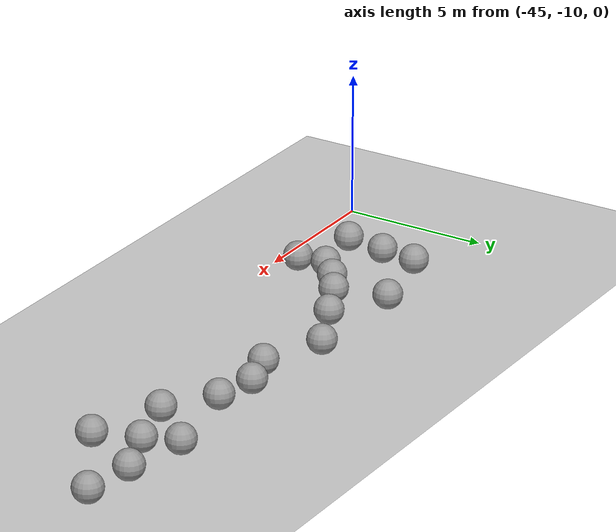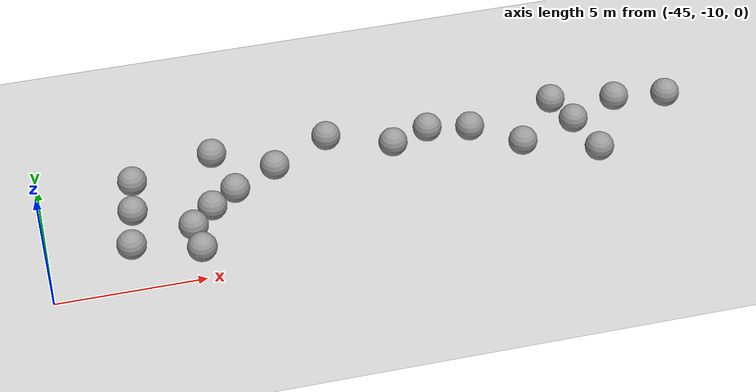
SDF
<sdf version="1.6">
 <world name="default">
  <model name="ground_plane">
   <static>1</static>
   <link name="link">
    <collision name="collision">
     <geometry><plane><normal>0 0 1</normal><size>100 100</size></plane></geometry>
     <surface><friction><ode><mu>100</mu><mu2>50</mu2></ode></friction></surface>
    </collision>
    <visual name="visual">
     <cast_shadows>0</cast_shadows>
     <geometry><plane><normal>0 0 1</normal><size>100 100</size></plane></geometry>
     <material>
      <script><uri>file://media/materials/scripts/gazebo.material</uri><name>Gazebo/Grey</name></script>
     </material>
    </visual>
   </link>
  </model>
  <model name="unit_sphere_0_clone_63">
   <pose>-42.2363 -8.45977 0.5 0 -0 0</pose>
   <link name="link">
    <inertial>
     <mass>1</mass>
     <inertia><ixx>0.1</ixx><ixy>0</ixy><ixz>0</ixz><iyy>0.1</iyy><iyz>0</iyz><izz>0.1</izz></inertia>
    </inertial>
    <collision name="collision"><geometry><sphere><radius>0.5</radius></sphere></geometry></collision>
    <visual name="visual">
     <geometry><sphere><radius>0.5</radius></sphere></geometry>
     <material>
      <script><name>Gazebo/Grey</name><uri>file://media/materials/scripts/gazebo.material</uri></script>
     </material>
    </visual>
   </link>
  </model>
  <model name="unit_sphere_0_clone_64">
   <pose>-31.5345 -5.4075 0.5 0 -0 0</pose>
   <link name="link">
    <inertial>
     <mass>1</mass>
     <inertia><ixx>0.1</ixx><ixy>0</ixy><ixz>0</ixz><iyy>0.1</iyy><iyz>0</iyz><izz>0.1</izz></inertia>
    </inertial>
    <collision name="collision"><geometry><sphere><radius>0.5</radius></sphere></geometry></collision>
    <visual name="visual">
     <geometry><sphere><radius>0.5</radius></sphere></geometry>
     <material>
      <script><name>Gazebo/Grey</name><uri>file://media/materials/scripts/gazebo.material</uri></script>
     </material>
    </visual>
   </link>
  </model>
  <model name="unit_sphere_0_clone_65">
   <pose>-24.7963 -5.36295 0.5 0 -0 0</pose>
   <link name="link">
    <inertial>
     <mass>1</mass>
     <inertia><ixx>0.1</ixx><ixy>0</ixy><ixz>0</ixz><iyy>0.1</iyy><iyz>0</iyz><izz>0.1</izz></inertia>
    </inertial>
    <collision name="collision"><geometry><sphere><radius>0.5</radius></sphere></geometry></collision>
    <visual name="visual">
     <geometry><sphere><radius>0.5</radius></sphere></geometry>
     <material>
      <script><name>Gazebo/Grey</name><uri>file://media/materials/scripts/gazebo.material</uri></script>
     </material>
    </visual>
   </link>
  </model>
  <model name="unit_sphere_0_clone_89">
   <pose>-38.4946 -6.74665 0.5 0 -0 0</pose>
   <link name="link">
    <inertial>
     <mass>1</mass>
     <inertia><ixx>0.1</ixx><ixy>0</ixy><ixz>0</ixz><iyy>0.1</iyy><iyz>0</iyz><izz>0.1</izz></inertia>
    </inertial>
    <collision name="collision"><geometry><sphere><radius>0.5</radius></sphere></geometry></collision>
    <visual name="visual">
     <geometry><sphere><radius>0.5</radius></sphere></geometry>
     <material>
      <script><name>Gazebo/Grey</name><uri>file://media/materials/scripts/gazebo.material</uri></script>
     </material>
    </visual>
   </link>
  </model>
  <model name="unit_sphere_0_clone_91">
   <pose>-26.4934 -6.08641 0.5 0 -0 0</pose>
   <link name="link">
    <inertial>
     <mass>1</mass>
     <inertia><ixx>0.1</ixx><ixy>0</ixy><ixz>0</ixz><iyy>0.1</iyy><iyz>0</iyz><izz>0.1</izz></inertia>
    </inertial>
    <collision name="collision"><geometry><sphere><radius>0.5</radius></sphere></geometry></collision>
    <visual name="visual">
     <geometry><sphere><radius>0.5</radius></sphere></geometry>
     <material>
      <script><name>Gazebo/Grey</name><uri>file://media/materials/scripts/gazebo.material</uri></script>
     </material>
    </visual>
   </link>
  </model>
  <model name="unit_sphere_1_clone_91">
   <pose>-42 -7 0.5 0 -0 0</pose>
   <link name="link">
    <inertial>
     <mass>1</mass>
     <inertia><ixx>0.1</ixx><ixy>0</ixy><ixz>0</ixz><iyy>0.1</iyy><iyz>0</iyz><izz>0.1</izz></inertia>
    </inertial>
    <collision name="collision"><geometry><sphere><radius>0.5</radius></sphere></geometry></collision>
    <visual name="visual">
     <geometry><sphere><radius>0.5</radius></sphere></geometry>
     <material>
      <script><name>Gazebo/Grey</name><uri>file://media/materials/scripts/gazebo.material</uri></script>
     </material>
    </visual>
   </link>
  </model>
  <model name="unit_sphere_1_clone_92">
   <pose>-39.3714 -7.34742 0.5 -0.024529 0.017906 -0.018975</pose>
   <link name="link">
    <inertial>
     <mass>1</mass>
     <inertia><ixx>0.1</ixx><ixy>0</ixy><ixz>0</ixz><iyy>0.1</iyy><iyz>0</iyz><izz>0.1</izz></inertia>
    </inertial>
    <collision name="collision"><geometry><sphere><radius>0.5</radius></sphere></geometry></collision>
    <visual name="visual">
     <geometry><sphere><radius>0.5</radius></sphere></geometry>
     <material>
      <script><name>Gazebo/Grey</name><uri>file://media/materials/scripts/gazebo.material</uri></script>
     </material>
    </visual>
   </link>
  </model>
  <model name="unit_sphere_1_clone_93">
   <pose>-40.1191 -8.05455 0.5 0.005742 -0.042316 -0.001716</pose>
   <link name="link">
    <inertial>
     <mass>1</mass>
     <inertia><ixx>0.1</ixx><ixy>0</ixy><ixz>0</ixz><iyy>0.1</iyy><iyz>0</iyz><izz>0.1</izz></inertia>
    </inertial>
    <collision name="collision"><geometry><sphere><radius>0.5</radius></sphere></geometry></collision>
    <visual name="visual">
     <geometry><sphere><radius>0.5</radius></sphere></geometry>
     <material>
      <script><name>Gazebo/Grey</name><uri>file://media/materials/scripts/gazebo.material</uri></script>
     </material>
    </visual>
   </link>
  </model>
  <model name="unit_sphere_1_clone_94">
   <pose>-39.9974 -9.06024 0.5 0.025412 -0.000329 0.017111</pose>
   <link name="link">
    <inertial>
     <mass>1</mass>
     <inertia><ixx>0.1</ixx><ixy>0</ixy><ixz>0</ixz><iyy>0.1</iyy><iyz>0</iyz><izz>0.1</izz></inertia>
    </inertial>
    <collision name="collision"><geometry><sphere><radius>0.5</radius></sphere></geometry></collision>
    <visual name="visual">
     <geometry><sphere><radius>0.5</radius></sphere></geometry>
     <material>
      <script><name>Gazebo/Grey</name><uri>file://media/materials/scripts/gazebo.material</uri></script>
     </material>
    </visual>
   </link>
  </model>
  <model name="unit_sphere_1_clone_95">
   <pose>-37 -6 0.5 0 -0 0</pose>
   <link name="link">
    <inertial>
     <mass>1</mass>
     <inertia><ixx>0.1</ixx><ixy>0</ixy><ixz>0</ixz><iyy>0.1</iyy><iyz>0</iyz><izz>0.1</izz></inertia>
    </inertial>
    <collision name="collision"><geometry><sphere><radius>0.5</radius></sphere></geometry></collision>
    <visual name="visual">
     <geometry><sphere><radius>0.5</radius></sphere></geometry>
     <material>
      <script><name>Gazebo/Grey</name><uri>file://media/materials/scripts/gazebo.material</uri></script>
     </material>
    </visual>
   </link>
  </model>
  <model name="unit_sphere_1_clone_96">
   <pose>-35.0267 -5.03814 0.5 0.015478 -0.010899 -7.9e-05</pose>
   <link name="link">
    <inertial>
     <mass>1</mass>
     <inertia><ixx>0.1</ixx><ixy>0</ixy><ixz>0</ixz><iyy>0.1</iyy><iyz>0</iyz><izz>0.1</izz></inertia>
    </inertial>
    <collision name="collision"><geometry><sphere><radius>0.5</radius></sphere></geometry></collision>
    <visual name="visual">
     <geometry><sphere><radius>0.5</radius></sphere></geometry>
     <material>
      <script><name>Gazebo/Grey</name><uri>file://media/materials/scripts/gazebo.material</uri></script>
     </material>
    </visual>
   </link>
  </model>
  <model name="unit_sphere_1_clone_97">
   <pose>-39 -5 0.5 0 -0 0</pose>
   <link name="link">
    <inertial>
     <mass>1</mass>
     <inertia><ixx>0.1</ixx><ixy>0</ixy><ixz>0</ixz><iyy>0.1</iyy><iyz>0</iyz><izz>0.1</izz></inertia>
    </inertial>
    <collision name="collision"><geometry><sphere><radius>0.5</radius></sphere></geometry></collision>
    <visual name="visual">
     <geometry><sphere><radius>0.5</radius></sphere></geometry>
     <material>
      <script><name>Gazebo/Grey</name><uri>file://media/materials/scripts/gazebo.material</uri></script>
     </material>
    </visual>
   </link>
  </model>
  <model name="unit_sphere_1_clone_98">
   <pose>-41.8241 -5.68601 0.5 0 -0 0</pose>
   <link name="link">
    <inertial>
     <mass>1</mass>
     <inertia><ixx>0.1</ixx><ixy>0</ixy><ixz>0</ixz><iyy>0.1</iyy><iyz>0</iyz><izz>0.1</izz></inertia>
    </inertial>
    <collision name="collision"><geometry><sphere><radius>0.5</radius></sphere></geometry></collision>
    <visual name="visual">
     <geometry><sphere><radius>0.5</radius></sphere></geometry>
     <material>
      <script><name>Gazebo/Grey</name><uri>file://media/materials/scripts/gazebo.material</uri></script>
     </material>
    </visual>
   </link>
  </model>
  <model name="unit_sphere_1_clone_100">
   <pose>-32.842 -5.82946 0.5 0 -0 0</pose>
   <link name="link">
    <inertial>
     <mass>1</mass>
     <inertia><ixx>0.1</ixx><ixy>0</ixy><ixz>0</ixz><iyy>0.1</iyy><iyz>0</iyz><izz>0.1</izz></inertia>
    </inertial>
    <collision name="collision"><geometry><sphere><radius>0.5</radius></sphere></geometry></collision>
    <visual name="visual">
     <geometry><sphere><radius>0.5</radius></sphere></geometry>
     <material>
      <script><name>Gazebo/Grey</name><uri>file://media/materials/scripts/gazebo.material</uri></script>
     </material>
    </visual>
   </link>
  </model>
  <model name="unit_sphere_1_clone_102">
   <pose>-30.0862 -5.67203 0.5 0.048379 -0.047822 -0.001157</pose>
   <link name="link">
    <inertial>
     <mass>1</mass>
     <inertia><ixx>0.1</ixx><ixy>0</ixy><ixz>0</ixz><iyy>0.1</iyy><iyz>0</iyz><izz>0.1</izz></inertia>
    </inertial>
    <collision name="collision"><geometry><sphere><radius>0.5</radius></sphere></geometry></collision>
    <visual name="visual">
     <geometry><sphere><radius>0.5</radius></sphere></geometry>
     <material>
      <script><name>Gazebo/Grey</name><uri>file://media/materials/scripts/gazebo.material</uri></script>
     </material>
    </visual>
   </link>
  </model>
  <model name="unit_sphere_1_clone_104">
   <pose>-28.479 -6.73114 0.5 0 -0 0</pose>
   <link name="link">
    <inertial>
     <mass>1</mass>
     <inertia><ixx>0.1</ixx><ixy>0</ixy><ixz>0</ixz><iyy>0.1</iyy><iyz>0</iyz><izz>0.1</izz></inertia>
    </inertial>
    <collision name="collision"><geometry><sphere><radius>0.5</radius></sphere></geometry></collision>
    <visual name="visual">
     <geometry><sphere><radius>0.5</radius></sphere></geometry>
     <material>
      <script><name>Gazebo/Grey</name><uri>file://media/materials/scripts/gazebo.material</uri></script>
     </material>
    </visual>
   </link>
  </model>
  <model name="unit_sphere_1_clone_105">
   <pose>-27 -5 0.5 0 -0 0</pose>
   <link name="link">
    <inertial>
     <mass>1</mass>
     <inertia><ixx>0.1</ixx><ixy>0</ixy><ixz>0</ixz><iyy>0.1</iyy><iyz>0</iyz><izz>0.1</izz></inertia>
    </inertial>
    <collision name="collision"><geometry><sphere><radius>0.5</radius></sphere></geometry></collision>
    <visual name="visual">
     <geometry><sphere><radius>0.5</radius></sphere></geometry>
     <material>
      <script><name>Gazebo/Grey</name><uri>file://media/materials/scripts/gazebo.material</uri></script>
     </material>
    </visual>
   </link>
  </model>
  <model name="unit_sphere_1_clone_106">
   <pose>-26 -7.55852 0.5 0 -0 0</pose>
   <link name="link">
    <inertial>
     <mass>1</mass>
     <inertia><ixx>0.1</ixx><ixy>0</ixy><ixz>0</ixz><iyy>0.1</iyy><iyz>0</iyz><izz>0.1</izz></inertia>
    </inertial>
    <collision name="collision"><geometry><sphere><radius>0.5</radius></sphere></geometry></collision>
    <visual name="visual">
     <geometry><sphere><radius>0.5</radius></sphere></geometry>
     <material>
      <script><name>Gazebo/Grey</name><uri>file://media/materials/scripts/gazebo.material</uri></script>
     </material>
    </visual>
   </link>
  </model>
  <model name="unit_sphere_1_clone_107">
   <pose>-23 -5.57963 0.5 0 -0 0</pose>
   <link name="link">
    <inertial>
     <mass>1</mass>
     <inertia><ixx>0.1</ixx><ixy>0</ixy><ixz>0</ixz><iyy>0.1</iyy><iyz>0</iyz><izz>0.1</izz></inertia>
    </inertial>
    <collision name="collision"><geometry><sphere><radius>0.5</radius></sphere></geometry></collision>
    <visual name="visual">
     <geometry><sphere><radius>0.5</radius></sphere></geometry>
     <material>
      <script><name>Gazebo/Grey</name><uri>file://media/materials/scripts/gazebo.material</uri></script>
     </material>
    </visual>
   </link>
  </model>
 </world>
</sdf>
